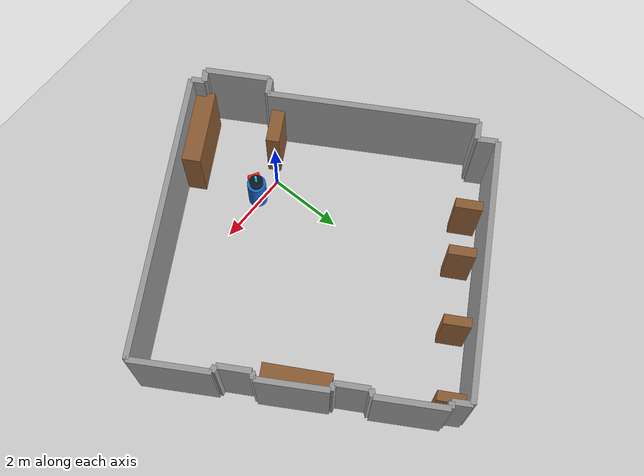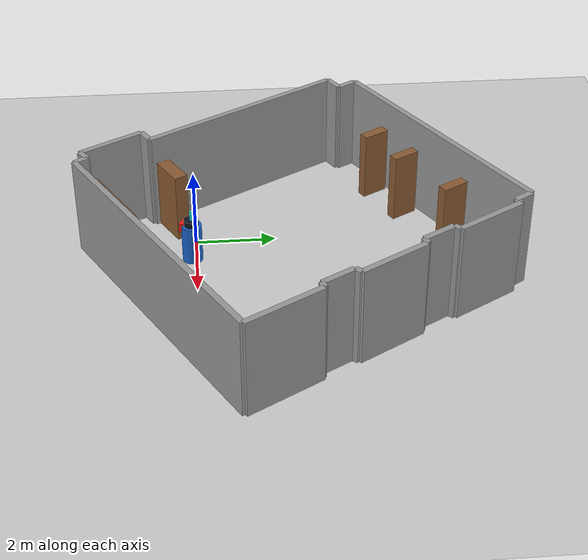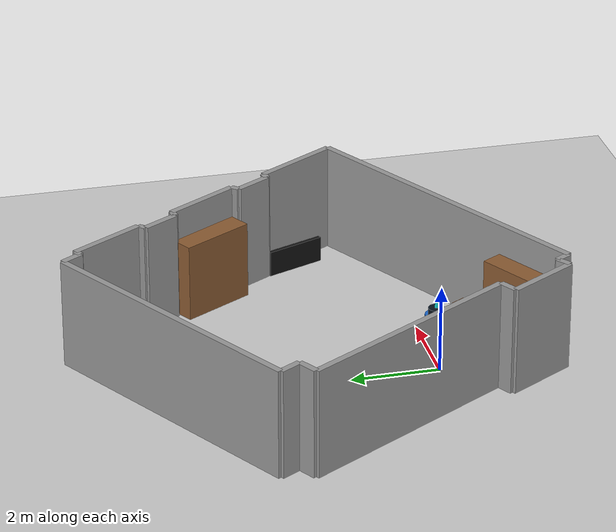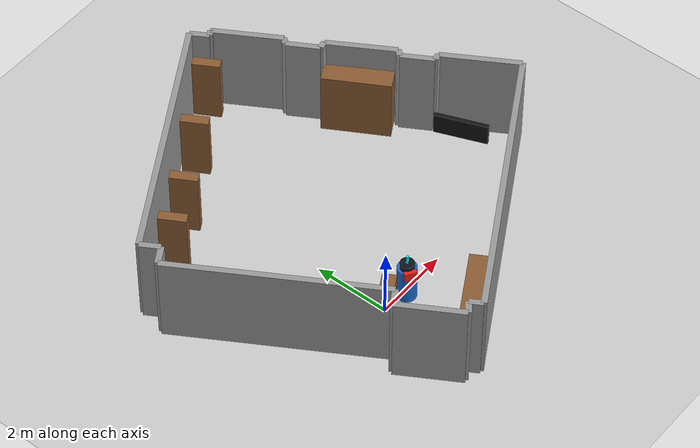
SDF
<sdf version="1.7">
 <world name="default">
  <plugin name="socnav_plugin" filename="libSocNavPlugin.so">
   <robot_name>robot</robot_name>
   <trajectory_file>/home/hunav_gz_classic_ws/SocNav3_trajectories/src1/000000082.json</trajectory_file>
   <human_slots>2</human_slots>
   <goal_angle_mesh>
    <angle_threshold>0.1</angle_threshold>
    <uri>/home/hunav_gz_classic_ws/src/socnav_gazebo_reproducer/meshes/000000082_goal_angle_00.stl</uri>
   </goal_angle_mesh>
  </plugin>
  <light name="sun" type="directional">
   <pose>0 0 10 0 -0 0</pose>
   <diffuse>0.8 0.8 0.8 1</diffuse>
   <specular>0.2 0.2 0.2 1</specular>
   <attenuation>
    <range>1000</range>
    <constant>0.9</constant>
    <linear>0.01</linear>
    <quadratic>0.001</quadratic>
   </attenuation>
   <direction>-0.5 0.1 -0.9</direction>
   <spot><inner_angle>0</inner_angle><outer_angle>0</outer_angle><falloff>0</falloff></spot>
  </light>
  <model name="ground_plane">
   <static>1</static>
   <link name="link">
    <collision name="collision">
     <geometry><plane><normal>0 0 1</normal><size>100 100</size></plane></geometry>
     <surface><friction><ode><mu>100</mu><mu2>50</mu2></ode></friction></surface>
    </collision>
    <visual name="visual">
     <cast_shadows>0</cast_shadows>
     <geometry><plane><normal>0 0 1</normal><size>100 100</size></plane></geometry>
     <material>
      <script><uri>file://media/materials/scripts/kitchen.material</uri><name>Kitchen/CounterTop_H</name></script>
     </material>
    </visual>
   </link>
  </model>
  <gravity>0 0 -9.8</gravity>
  <magnetic_field>6e-06 2.3e-05 -4.2e-05</magnetic_field>
  <atmosphere type="adiabatic"/>
  <physics type="ode">
   <max_step_size>0.001</max_step_size>
   <real_time_factor>1</real_time_factor>
   <real_time_update_rate>1000</real_time_update_rate>
  </physics>
  <scene><ambient>0.4 0.4 0.4 1</ambient><background>0.7 0.7 0.7 1</background><shadows>1</shadows></scene>
  <audio><device>default</device></audio>
  <spherical_coordinates>
   <surface_model>EARTH_WGS84</surface_model>
   <latitude_deg>0</latitude_deg>
   <longitude_deg>0</longitude_deg>
   <elevation>0</elevation>
   <heading_deg>0</heading_deg>
  </spherical_coordinates>
  <model name="robot">
   <pose>0.6993834720558839 -0.09303899470613941 0.5 0 0 -2.1151024940586485</pose>
   <link name="link">
    <collision name="collision">
     <geometry><cylinder><radius>0.25</radius><length>1.0</length></cylinder></geometry>
    </collision>
    <visual name="visual">
     <geometry><cylinder><radius>0.25</radius><length>1.0</length></cylinder></geometry>
     <material><ambient>0.1 0.4 0.8 1</ambient><diffuse>0.1 0.4 0.8 1</diffuse></material>
    </visual>
    <visual name="robot_top">
     <pose>0 0 0.58 0 0 0</pose>
     <geometry><cylinder><radius>0.18</radius><length>0.16</length></cylinder></geometry>
     <material><ambient>0.04 0.08 0.12 1</ambient><diffuse>0.04 0.08 0.12 1</diffuse></material>
    </visual>
    <visual name="robot_front">
     <pose>0.21 0 0.44 0 0 0</pose>
     <geometry><box><size>0.12 0.32 0.24</size></box></geometry>
     <material><ambient>0.9 0.12 0.08 1</ambient><diffuse>0.9 0.12 0.08 1</diffuse></material>
    </visual>
    <visual name="robot_sensor">
     <pose>0 0 0.78 0 0 0</pose>
     <geometry><cylinder><radius>0.035</radius><length>0.24</length></cylinder></geometry>
     <material><ambient>0.1 0.9 0.9 1</ambient><diffuse>0.1 0.9 0.9 1</diffuse></material>
    </visual>
   </link>
  </model>
  <model name="static_object_0">
   <static>true</static>
   <pose>2.2117999999999998 7.328799999999999 0.9 0 0 -1.0500036732051035</pose>
   <link name="link">
    <collision name="collision"><geometry><box><size>0.7 0.25 1.8</size></box></geometry></collision>
    <visual name="visual">
     <geometry><box><size>0.7 0.25 1.8</size></box></geometry>
     <material><ambient>0.55 0.36 0.2 1</ambient><diffuse>0.55 0.36 0.2 1</diffuse></material>
    </visual>
   </link>
  </model>
  <model name="static_object_1">
   <static>true</static>
   <pose>0.6058 6.323799999999999 0.9 0 0 -1.0500036732051035</pose>
   <link name="link">
    <collision name="collision"><geometry><box><size>0.7 0.25 1.8</size></box></geometry></collision>
    <visual name="visual">
     <geometry><box><size>0.7 0.25 1.8</size></box></geometry>
     <material><ambient>0.55 0.36 0.2 1</ambient><diffuse>0.55 0.36 0.2 1</diffuse></material>
    </visual>
   </link>
  </model>
  <model name="static_object_2">
   <static>true</static>
   <pose>-0.9248 5.3435999999999995 0.9 0 0 -1.0500036732051035</pose>
   <link name="link">
    <collision name="collision"><geometry><box><size>0.7 0.25 1.8</size></box></geometry></collision>
    <visual name="visual">
     <geometry><box><size>0.7 0.25 1.8</size></box></geometry>
     <material><ambient>0.55 0.36 0.2 1</ambient><diffuse>0.55 0.36 0.2 1</diffuse></material>
    </visual>
   </link>
  </model>
  <model name="static_object_3">
   <static>true</static>
   <pose>-2.0494 4.725 0.9 0 0 -1.0500036732051035</pose>
   <link name="link">
    <collision name="collision"><geometry><box><size>0.7 0.25 1.8</size></box></geometry></collision>
    <visual name="visual">
     <geometry><box><size>0.7 0.25 1.8</size></box></geometry>
     <material><ambient>0.55 0.36 0.2 1</ambient><diffuse>0.55 0.36 0.2 1</diffuse></material>
    </visual>
   </link>
  </model>
  <model name="static_object_4">
   <static>true</static>
   <pose>-0.6322 -0.5222 0.9 0 0 3.6623863267948966</pose>
   <link name="link">
    <collision name="collision"><geometry><box><size>0.9 0.35 1.8</size></box></geometry></collision>
    <visual name="visual">
     <geometry><box><size>0.9 0.35 1.8</size></box></geometry>
     <material><ambient>0.55 0.36 0.2 1</ambient><diffuse>0.55 0.36 0.2 1</diffuse></material>
    </visual>
   </link>
  </model>
  <model name="static_object_5">
   <static>true</static>
   <pose>4.19 4.185 0.9 0 0 0.5207963267948965</pose>
   <link name="link">
    <collision name="collision"><geometry><box><size>0.51 1.75 1.8</size></box></geometry></collision>
    <visual name="visual">
     <geometry><box><size>0.51 1.75 1.8</size></box></geometry>
     <material><ambient>0.55 0.36 0.2 1</ambient><diffuse>0.55 0.36 0.2 1</diffuse></material>
    </visual>
   </link>
  </model>
  <model name="static_object_6">
   <static>true</static>
   <pose>5.487100000000001 1.9614 0.3 0 0 0.3707963267948966</pose>
   <link name="link">
    <collision name="collision"><geometry><box><size>0.1 1.4 0.6</size></box></geometry></collision>
    <visual name="visual">
     <geometry><box><size>0.1 1.4 0.6</size></box></geometry>
     <material><ambient>0.08 0.08 0.08 1</ambient><diffuse>0.08 0.08 0.08 1</diffuse></material>
    </visual>
   </link>
  </model>
  <model name="static_object_15">
   <static>true</static>
   <pose>0.65 -2.07 0.9 0 0 -1.0492036732051035</pose>
   <link name="link">
    <collision name="collision"><geometry><box><size>0.5 2 1.8</size></box></geometry></collision>
    <visual name="visual">
     <geometry><box><size>0.5 2 1.8</size></box></geometry>
     <material><ambient>0.55 0.36 0.2 1</ambient><diffuse>0.55 0.36 0.2 1</diffuse></material>
    </visual>
   </link>
  </model>
  <model name="simple_world_test">
   <link name="Wall_0">
    <collision name="Wall_0_Collision">
     <geometry><box><size>1.708156901458411 0.15 2.5</size></box></geometry>
     <pose>0 0 1.25 0 -0 0</pose>
    </collision>
    <visual name="Wall_0_Visual">
     <pose>0 0 1.25 0 -0 0</pose>
     <geometry><box><size>1.708156901458411 0.15 2.5</size></box></geometry>
     <material>
      <script><uri>file://media/materials/scripts/gazebo.material</uri><name>Gazebo/Grey</name></script>
      <ambient>1 1 1 1</ambient>
     </material>
     <meta><layer>0</layer></meta>
    </visual>
    <pose>-0.895 -1.9849999999999999 0 0 -0 2.1051918035493102</pose>
   </link>
   <link name="Wall_1">
    <collision name="Wall_1_Collision">
     <geometry><box><size>0.43046486500061765 0.15 2.5</size></box></geometry>
     <pose>0 0 1.25 0 -0 0</pose>
    </collision>
    <visual name="Wall_1_Visual">
     <pose>0 0 1.25 0 -0 0</pose>
     <geometry><box><size>0.43046486500061765 0.15 2.5</size></box></geometry>
     <material>
      <script><uri>file://media/materials/scripts/gazebo.material</uri><name>Gazebo/Grey</name></script>
      <ambient>1 1 1 1</ambient>
     </material>
     <meta><layer>0</layer></meta>
    </visual>
    <pose>-1.145 -1.1400000000000001 0 0 -0 0.5364354576047312</pose>
   </link>
   <link name="Wall_2">
    <collision name="Wall_2_Collision">
     <geometry><box><size>5.466903785507845 0.15 2.5</size></box></geometry>
     <pose>0 0 1.25 0 -0 0</pose>
    </collision>
    <visual name="Wall_2_Visual">
     <pose>0 0 1.25 0 -0 0</pose>
     <geometry><box><size>5.466903785507845 0.15 2.5</size></box></geometry>
     <material>
      <script><uri>file://media/materials/scripts/gazebo.material</uri><name>Gazebo/Grey</name></script>
      <ambient>1 1 1 1</ambient>
     </material>
     <meta><layer>0</layer></meta>
    </visual>
    <pose>-2.357 1.3195000000000001 0 0 -0 2.107231784399628</pose>
   </link>
   <link name="Wall_3">
    <collision name="Wall_3_Collision">
     <geometry><box><size>0.49072994610070386 0.15 2.5</size></box></geometry>
     <pose>0 0 1.25 0 -0 0</pose>
    </collision>
    <visual name="Wall_3_Visual">
     <pose>0 0 1.25 0 -0 0</pose>
     <geometry><box><size>0.49072994610070386 0.15 2.5</size></box></geometry>
     <material>
      <script><uri>file://media/materials/scripts/gazebo.material</uri><name>Gazebo/Grey</name></script>
      <ambient>1 1 1 1</ambient>
     </material>
     <meta><layer>0</layer></meta>
    </visual>
    <pose>-3.5431 3.7944 0 0 -0 0.5364354576047313</pose>
   </link>
   <link name="Wall_4">
    <collision name="Wall_4_Collision">
     <geometry><box><size>0.5294717839507592 0.15 2.5</size></box></geometry>
     <pose>0 0 1.25 0 -0 0</pose>
    </collision>
    <visual name="Wall_4_Visual">
     <pose>0 0 1.25 0 -0 0</pose>
     <geometry><box><size>0.5294717839507592 0.15 2.5</size></box></geometry>
     <material>
      <script><uri>file://media/materials/scripts/gazebo.material</uri><name>Gazebo/Grey</name></script>
      <ambient>1 1 1 1</ambient>
     </material>
     <meta><layer>0</layer></meta>
    </visual>
    <pose>-3.4675000000000002 4.147349999999999 0 0 -0 2.1072317843996284</pose>
   </link>
   <link name="Wall_5">
    <collision name="Wall_5_Collision">
     <geometry><box><size>6.7539992189813 0.15 2.5</size></box></geometry>
     <pose>0 0 1.25 0 -0 0</pose>
    </collision>
    <visual name="Wall_5_Visual">
     <pose>0 0 1.25 0 -0 0</pose>
     <geometry><box><size>6.7539992189813 0.15 2.5</size></box></geometry>
     <material>
      <script><uri>file://media/materials/scripts/gazebo.material</uri><name>Gazebo/Grey</name></script>
      <ambient>1 1 1 1</ambient>
     </material>
     <meta><layer>0</layer></meta>
    </visual>
    <pose>-0.7023500000000003 6.1045 0 0 -0 0.5377101541737341</pose>
   </link>
   <link name="Wall_6">
    <collision name="Wall_6_Collision">
     <geometry><box><size>0.5036622876491748 0.15 2.5</size></box></geometry>
     <pose>0 0 1.25 0 -0 0</pose>
    </collision>
    <visual name="Wall_6_Visual">
     <pose>0 0 1.25 0 -0 0</pose>
     <geometry><box><size>0.5036622876491748 0.15 2.5</size></box></geometry>
     <material>
      <script><uri>file://media/materials/scripts/gazebo.material</uri><name>Gazebo/Grey</name></script>
      <ambient>1 1 1 1</ambient>
     </material>
     <meta><layer>0</layer></meta>
    </visual>
    <pose>2.3286499999999997 7.6187499999999995 0 0 -0 -1.0258140687575532</pose>
   </link>
   <link name="Wall_7">
    <collision name="Wall_7_Collision">
     <geometry><box><size>0.16555501864939062 0.15 2.5</size></box></geometry>
     <pose>0 0 1.25 0 -0 0</pose>
    </collision>
    <visual name="Wall_7_Visual">
     <pose>0 0 1.25 0 -0 0</pose>
     <geometry><box><size>0.16555501864939062 0.15 2.5</size></box></geometry>
     <material>
      <script><uri>file://media/materials/scripts/gazebo.material</uri><name>Gazebo/Grey</name></script>
      <ambient>1 1 1 1</ambient>
     </material>
     <meta><layer>0</layer></meta>
    </visual>
    <pose>2.526205 7.452005 0 0 -0 0.6275661545635356</pose>
   </link>
   <link name="Wall_8">
    <collision name="Wall_8_Collision">
     <geometry><box><size>1.812257132776693 0.15 2.5</size></box></geometry>
     <pose>0 0 1.25 0 -0 0</pose>
    </collision>
    <visual name="Wall_8_Visual">
     <pose>0 0 1.25 0 -0 0</pose>
     <geometry><box><size>1.812257132776693 0.15 2.5</size></box></geometry>
     <material>
      <script><uri>file://media/materials/scripts/gazebo.material</uri><name>Gazebo/Grey</name></script>
      <ambient>1 1 1 1</ambient>
     </material>
     <meta><layer>0</layer></meta>
    </visual>
    <pose>3.0561249999999998 6.72165 0 0 -0 -1.0345983988769096</pose>
   </link>
   <link name="Wall_9">
    <collision name="Wall_9_Collision">
     <geometry><box><size>0.18720273101640417 0.15 2.5</size></box></geometry>
     <pose>0 0 1.25 0 -0 0</pose>
    </collision>
    <visual name="Wall_9_Visual">
     <pose>0 0 1.25 0 -0 0</pose>
     <geometry><box><size>0.18720273101640417 0.15 2.5</size></box></geometry>
     <material>
      <script><uri>file://media/materials/scripts/gazebo.material</uri><name>Gazebo/Grey</name></script>
      <ambient>1 1 1 1</ambient>
     </material>
     <meta><layer>0</layer></meta>
    </visual>
    <pose>3.4591399999999997 5.870765 0 0 -0 -2.2652268265154403</pose>
   </link>
   <link name="Wall_10">
    <collision name="Wall_10_Collision">
     <geometry><box><size>0.8609404915556008 0.15 2.5</size></box></geometry>
     <pose>0 0 1.25 0 -0 0</pose>
    </collision>
    <visual name="Wall_10_Visual">
     <pose>0 0 1.25 0 -0 0</pose>
     <geometry><box><size>0.8609404915556008 0.15 2.5</size></box></geometry>
     <material>
      <script><uri>file://media/materials/scripts/gazebo.material</uri><name>Gazebo/Grey</name></script>
      <ambient>1 1 1 1</ambient>
     </material>
     <meta><layer>0</layer></meta>
    </visual>
    <pose>3.61739 5.42774 0 0 -0 -1.0393608275241233</pose>
   </link>
   <link name="Wall_11">
    <collision name="Wall_11_Collision">
     <geometry><box><size>0.18720273101640394 0.15 2.5</size></box></geometry>
     <pose>0 0 1.25 0 -0 0</pose>
    </collision>
    <visual name="Wall_11_Visual">
     <pose>0 0 1.25 0 -0 0</pose>
     <geometry><box><size>0.18720273101640394 0.15 2.5</size></box></geometry>
     <material>
      <script><uri>file://media/materials/scripts/gazebo.material</uri><name>Gazebo/Grey</name></script>
      <ambient>1 1 1 1</ambient>
     </material>
     <meta><layer>0</layer></meta>
    </visual>
    <pose>3.92734 5.074915 0 0 -0 0.196505088135111</pose>
   </link>
   <link name="Wall_12">
    <collision name="Wall_12_Collision">
     <geometry><box><size>1.8079575575770577 0.15 2.5</size></box></geometry>
     <pose>0 0 1.25 0 -0 0</pose>
    </collision>
    <visual name="Wall_12_Visual">
     <pose>0 0 1.25 0 -0 0</pose>
     <geometry><box><size>1.8079575575770577 0.15 2.5</size></box></geometry>
     <material>
      <script><uri>file://media/materials/scripts/gazebo.material</uri><name>Gazebo/Grey</name></script>
      <ambient>1 1 1 1</ambient>
     </material>
     <meta><layer>0</layer></meta>
    </visual>
    <pose>4.482990000000001 4.31729 0 0 -0 -1.0319799213083514</pose>
   </link>
   <link name="Wall_13">
    <collision name="Wall_13_Collision">
     <geometry><box><size>0.1872027310164041 0.15 2.5</size></box></geometry>
     <pose>0 0 1.25 0 -0 0</pose>
    </collision>
    <visual name="Wall_13_Visual">
     <pose>0 0 1.25 0 -0 0</pose>
     <geometry><box><size>0.1872027310164041 0.15 2.5</size></box></geometry>
     <material>
      <script><uri>file://media/materials/scripts/gazebo.material</uri><name>Gazebo/Grey</name></script>
      <ambient>1 1 1 1</ambient>
     </material>
     <meta><layer>0</layer></meta>
    </visual>
    <pose>4.886940000000001 3.4694650000000005 0 0 -0 -2.265226826515444</pose>
   </link>
   <link name="Wall_14">
    <collision name="Wall_14_Collision">
     <geometry><box><size>0.8609404915556012 0.15 2.5</size></box></geometry>
     <pose>0 0 1.25 0 -0 0</pose>
    </collision>
    <visual name="Wall_14_Visual">
     <pose>0 0 1.25 0 -0 0</pose>
     <geometry><box><size>0.8609404915556012 0.15 2.5</size></box></geometry>
     <material>
      <script><uri>file://media/materials/scripts/gazebo.material</uri><name>Gazebo/Grey</name></script>
      <ambient>1 1 1 1</ambient>
     </material>
     <meta><layer>0</layer></meta>
    </visual>
    <pose>5.04519 3.02644 0 0 -0 -1.0393608275241235</pose>
   </link>
   <link name="Wall_15">
    <collision name="Wall_15_Collision">
     <geometry><box><size>0.17302385182396068 0.15 2.5</size></box></geometry>
     <pose>0 0 1.25 0 -0 0</pose>
    </collision>
    <visual name="Wall_15_Visual">
     <pose>0 0 1.25 0 -0 0</pose>
     <geometry><box><size>0.17302385182396068 0.15 2.5</size></box></geometry>
     <material>
      <script><uri>file://media/materials/scripts/gazebo.material</uri><name>Gazebo/Grey</name></script>
      <ambient>1 1 1 1</ambient>
     </material>
     <meta><layer>0</layer></meta>
    </visual>
    <pose>5.348050000000001 2.672905 0 0 -0 0.20445709306247994</pose>
   </link>
   <link name="Wall_16">
    <collision name="Wall_16_Collision">
     <geometry><box><size>2.04901727908771 0.15 2.5</size></box></geometry>
     <pose>0 0 1.25 0 -0 0</pose>
    </collision>
    <visual name="Wall_16_Visual">
     <pose>0 0 1.25 0 -0 0</pose>
     <geometry><box><size>2.04901727908771 0.15 2.5</size></box></geometry>
     <material>
      <script><uri>file://media/materials/scripts/gazebo.material</uri><name>Gazebo/Grey</name></script>
      <ambient>1 1 1 1</ambient>
     </material>
     <meta><layer>0</layer></meta>
    </visual>
    <pose>5.95821 1.8109700000000002 0 0 -0 -1.03226003194473</pose>
   </link>
   <link name="Wall_17">
    <collision name="Wall_17_Collision">
     <geometry><box><size>7.512208847602681 0.15 2.5</size></box></geometry>
     <pose>0 0 1.25 0 -0 0</pose>
    </collision>
    <visual name="Wall_17_Visual">
     <pose>0 0 1.25 0 -0 0</pose>
     <geometry><box><size>7.512208847602681 0.15 2.5</size></box></geometry>
     <material>
      <script><uri>file://media/materials/scripts/gazebo.material</uri><name>Gazebo/Grey</name></script>
      <ambient>1 1 1 1</ambient>
     </material>
     <meta><layer>0</layer></meta>
    </visual>
    <pose>3.2312100000000004 -0.94733 0 0 -0 -2.6177639779300534</pose>
   </link>
   <link name="Wall_18">
    <collision name="Wall_18_Collision">
     <geometry><box><size>0.35298118930050676 0.15 2.5</size></box></geometry>
     <pose>0 0 1.25 0 -0 0</pose>
    </collision>
    <visual name="Wall_18_Visual">
     <pose>0 0 1.25 0 -0 0</pose>
     <geometry><box><size>0.35298118930050676 0.15 2.5</size></box></geometry>
     <material>
      <script><uri>file://media/materials/scripts/gazebo.material</uri><name>Gazebo/Grey</name></script>
      <ambient>1 1 1 1</ambient>
     </material>
     <meta><layer>0</layer></meta>
    </visual>
    <pose>-0.11144000000000001 -2.67443 0 0 -0 2.1072317843996275</pose>
   </link>
   <link name="Wall_19">
    <collision name="Wall_19_Collision">
     <geometry><box><size>0.32506205945942074 0.15 2.5</size></box></geometry>
     <pose>0 0 1.25 0 -0 0</pose>
    </collision>
    <visual name="Wall_19_Visual">
     <pose>0 0 1.25 0 -0 0</pose>
     <geometry><box><size>0.32506205945942074 0.15 2.5</size></box></geometry>
     <material>
      <script><uri>file://media/materials/scripts/gazebo.material</uri><name>Gazebo/Grey</name></script>
      <ambient>1 1 1 1</ambient>
     </material>
     <meta><layer>0</layer></meta>
    </visual>
    <pose>-0.33082 -2.621365 0 0 -0 -2.4894776984717417</pose>
   </link>
   <static>1</static>
  </model>
 </world>
</sdf>
